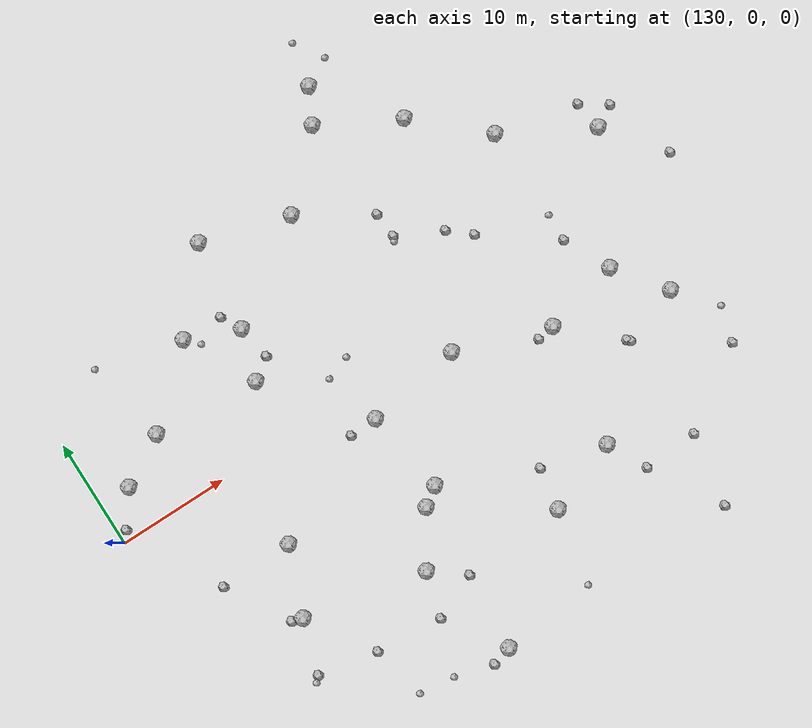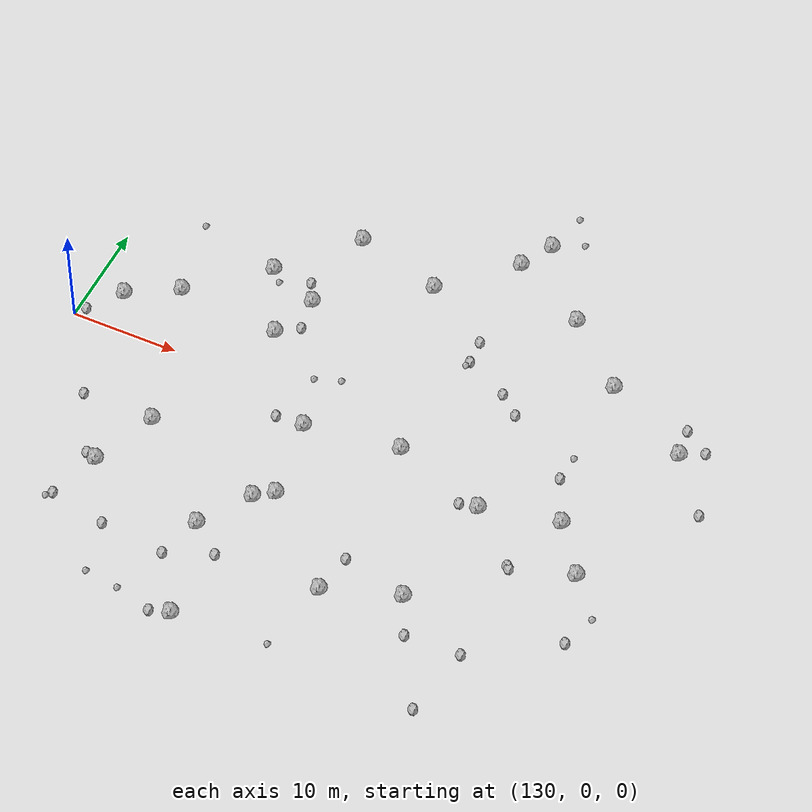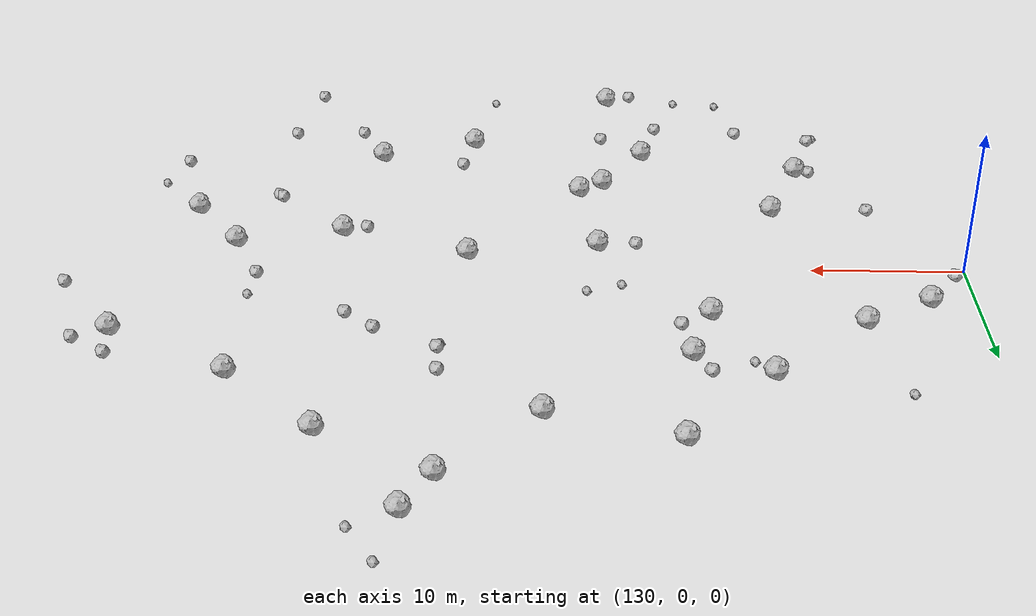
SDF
<sdf version="1.6">
 <world name="default">
  <include><uri>model://sun</uri></include>
  <model name="rock1_4_2">
   <include><uri>model://rock1</uri><pose>163.42857451865808 22.057677931532268 0.5 0 0 0</pose></include>
  </model>
  <model name="rock1_4_3">
   <include><uri>model://rock1</uri><pose>171.30248970167057 -4.42603301016937 0.5 0 0 0</pose></include>
  </model>
  <model name="rock1_4_4">
   <include><uri>model://rock1</uri><pose>162.89624630475998 -17.887943773245617 0.5 0 0 0</pose></include>
  </model>
  <model name="rock1_4_5">
   <include><uri>model://rock1</uri><pose>148.47829529275182 10.150947650268165 0.5 0 0 0</pose></include>
  </model>
  <model name="rock1_4_6">
   <include><uri>model://rock1</uri><pose>181.68502525014537 -7.349784486494123 0.5 0 0 0</pose></include>
  </model>
  <model name="rock1_4_7">
   <include><uri>model://rock1</uri><pose>157.5340373674738 16.275577896883476 0.5 0 0 0</pose></include>
  </model>
  <model name="rock1_4_8">
   <include><uri>model://rock1</uri><pose>137.3969005994166 6.404687936389358 0.5 0 0 0</pose></include>
  </model>
  <model name="rock1_4_9">
   <include><uri>model://rock1</uri><pose>155.1233991816422 -10.40272612277273 0.5 0 0 0</pose></include>
  </model>
  <model name="rock1_4_10">
   <include><uri>model://rock1</uri><pose>150.51610657387408 -16.13000491069848 0.5 0 0 0</pose></include>
  </model>
  <model name="rock1_4_11">
   <include><uri>model://rock1</uri><pose>132.96418667036585 3.8298181043057937 0.5 0 0 0</pose></include>
  </model>
  <model name="rock1_4_12">
   <include><uri>model://rock1</uri><pose>141.8650074743121 -7.776487384419532 0.5 0 0 0</pose></include>
  </model>
  <model name="rock1_4_13">
   <include><uri>model://rock1</uri><pose>165.0740769048542 25.204297280824278 0.5 0 0 0</pose></include>
  </model>
  <model name="rock1_4_14">
   <include><uri>model://rock1</uri><pose>162.68157987189144 -1.5084026194448903 0.5 0 0 0</pose></include>
  </model>
  <model name="rock1_4_15">
   <include><uri>model://rock1</uri><pose>184.4962583137686 8.172043731133812 0.5 0 0 0</pose></include>
  </model>
  <model name="rock1_4_16">
   <include><uri>model://rock1</uri><pose>153.98198348463328 -2.78788363229301 0.5 0 0 0</pose></include>
  </model>
  <model name="rock1_4_17">
   <include><uri>model://rock1</uri><pose>169.54105138106667 -15.53874354163636 0.5 0 0 0</pose></include>
  </model>
  <model name="rock1_4_18">
   <include><uri>model://rock1</uri><pose>178.34218600177167 -2.821514320091193 0.5 0 0 0</pose></include>
  </model>
  <model name="rock1_4_19">
   <include><uri>model://rock1</uri><pose>170.5781214827644 18.173732205172477 0.5 0 0 0</pose></include>
  </model>
  <model name="rock1_4_20">
   <include><uri>model://rock1</uri><pose>143.70255498075744 12.104029037482476 0.5 0 0 0</pose></include>
  </model>
  <model name="rock1_4_21">
   <include><uri>model://rock1</uri><pose>149.39284671665735 18.616920119529368 0.5 0 0 0</pose></include>
  </model>
  <model name="rock1_4_22">
   <include><uri>model://rock1</uri><pose>153.48374353748716 -11.551418453324985 0.5 0 0 0</pose></include>
  </model>
  <model name="rock1_4_23">
   <include><uri>model://rock1</uri><pose>152.85456808604783 -25.40208249816431 0.5 0 0 0</pose></include>
  </model>
  <model name="rock1_4_24">
   <include><uri>model://rock1</uri><pose>176.5247778817557 12.634084828604237 0.5 0 0 0</pose></include>
  </model>
  <model name="rock1_4_25">
   <include><uri>model://rock1</uri><pose>147.0436752727609 5.595885624447305 0.5 0 0 0</pose></include>
  </model>
  <model name="rock1_4_26">
   <include><uri>model://rock1</uri><pose>139.51170071051914 -13.744155358283308 0.5 0 0 0</pose></include>
  </model>
  <model name="rock2_4_0">
   <include><uri>model://rock2</uri><pose>168.09553942737827 7.798663784526255 0.3 0 0 0</pose></include>
  </model>
  <model name="rock2_4_1">
   <include><uri>model://rock2</uri><pose>176.2949222585869 -9.149535443771946 0.3 0 0 0</pose></include>
  </model>
  <model name="rock2_4_2">
   <include><uri>model://rock2</uri><pose>171.31722648105875 -19.09206630499076 0.3 0 0 0</pose></include>
  </model>
  <model name="rock2_4_3">
   <include><uri>model://rock2</uri><pose>188.54679075708492 2.871780224128287 0.3 0 0 0</pose></include>
  </model>
  <model name="rock2_4_4">
   <include><uri>model://rock2</uri><pose>186.5052160857623 9.309791843756088 0.3 0 0 0</pose></include>
  </model>
  <model name="rock2_4_5">
   <include><uri>model://rock2</uri><pose>163.9910595616871 9.891715082171977 0.3 0 0 0</pose></include>
  </model>
  <model name="rock2_4_6">
   <include><uri>model://rock2</uri><pose>137.9597721184707 -18.495398535597978 0.3 0 0 0</pose></include>
  </model>
  <model name="rock2_4_7">
   <include><uri>model://rock2</uri><pose>183.6319037660907 -14.108046609432039 0.3 0 0 0</pose></include>
  </model>
  <model name="rock2_4_8">
   <include><uri>model://rock2</uri><pose>149.31796293108263 -20.160233114070678 0.3 0 0 0</pose></include>
  </model>
  <model name="rock2_4_9">
   <include><uri>model://rock2</uri><pose>151.38283253582222 -2.8500836983992244 0.3 0 0 0</pose></include>
  </model>
  <model name="rock2_4_10">
   <include><uri>model://rock2</uri><pose>138.50465047124158 -13.425736818614261 0.3 0 0 0</pose></include>
  </model>
  <model name="rock2_4_11">
   <include><uri>model://rock2</uri><pose>170.03692607755377 6.103380700260715 0.3 0 0 0</pose></include>
  </model>
  <model name="rock2_4_12">
   <include><uri>model://rock2</uri><pose>143.2842498663419 -19.580977931619532 0.3 0 0 0</pose></include>
  </model>
  <model name="rock2_4_13">
   <include><uri>model://rock2</uri><pose>184.151597384625 10.925145007461715 0.3 0 0 0</pose></include>
  </model>
  <model name="rock2_4_14">
   <include><uri>model://rock2</uri><pose>176.35468733450912 -18.871234812490073 0.3 0 0 0</pose></include>
  </model>
  <model name="rock2_4_15">
   <include><uri>model://rock2</uri><pose>163.84919626991694 12.277986515229998 0.3 0 0 0</pose></include>
  </model>
  <model name="rock2_4_16">
   <include><uri>model://rock2</uri><pose>151.04796488110338 -25.90114347179383 0.3 0 0 0</pose></include>
  </model>
  <model name="rock2_4_17">
   <include><uri>model://rock2</uri><pose>148.94884180033552 7.001777635682494 0.3 0 0 0</pose></include>
  </model>
  <model name="rock2_4_18">
   <include><uri>model://rock2</uri><pose>153.41700086263592 -18.44108068198019 0.3 0 0 0</pose></include>
  </model>
  <model name="rock2_4_19">
   <include><uri>model://rock2</uri><pose>147.44846025022784 12.057699949334165 0.3 0 0 0</pose></include>
  </model>
  <model name="rock2_4_20">
   <include><uri>model://rock2</uri><pose>176.0328312527314 -8.915028419671046 0.3 0 0 0</pose></include>
  </model>
  <model name="rock2_4_21">
   <include><uri>model://rock2</uri><pose>169.65098014065313 -4.684071599515608 0.3 0 0 0</pose></include>
  </model>
  <model name="rock2_4_22">
   <include><uri>model://rock2</uri><pose>135.18956068305928 -7.796289666594824 0.3 0 0 0</pose></include>
  </model>
  <model name="rock2_4_23">
   <include><uri>model://rock2</uri><pose>163.54941349618858 -14.107622629925968 0.3 0 0 0</pose></include>
  </model>
  <model name="rock2_4_24">
   <include><uri>model://rock2</uri><pose>130.76890216583416 0.8527020744583105 0.3 0 0 0</pose></include>
  </model>
  <model name="rock2_4_25">
   <include><uri>model://rock2</uri><pose>176.3242467033572 1.4378736730199186 0.3 0 0 0</pose></include>
  </model>
  <model name="rock2_4_26">
   <include><uri>model://rock2</uri><pose>175.10787592840666 -25.44189756172849 0.3 0 0 0</pose></include>
  </model>
  <model name="rock3_4_0">
   <include><uri>model://rock3</uri><pose>152.47135161316737 2.298081994201972 0.2 0 0 0</pose></include>
  </model>
  <model name="rock3_4_1">
   <include><uri>model://rock3</uri><pose>176.47520795434366 3.9738205156844018 0.2 0 0 0</pose></include>
  </model>
  <model name="rock3_4_2">
   <include><uri>model://rock3</uri><pose>135.80884308396102 14.109411804369316 0.2 0 0 0</pose></include>
  </model>
  <model name="rock3_4_3">
   <include><uri>model://rock3</uri><pose>165.9592321878995 29.34047841452835 0.2 0 0 0</pose></include>
  </model>
  <model name="rock3_4_4">
   <include><uri>model://rock3</uri><pose>161.45514588422478 -24.713636423750202 0.2 0 0 0</pose></include>
  </model>
  <model name="rock3_4_5">
   <include><uri>model://rock3</uri><pose>167.6475970035287 26.662287729842866 0.2 0 0 0</pose></include>
  </model>
  <model name="rock3_4_6">
   <include><uri>model://rock3</uri><pose>144.36387629854738 -24.538704563002916 0.2 0 0 0</pose></include>
  </model>
  <model name="rock3_4_7">
   <include><uri>model://rock3</uri><pose>163.78167660670726 9.399944435786509 0.2 0 0 0</pose></include>
  </model>
  <model name="rock3_4_8">
   <include><uri>model://rock3</uri><pose>144.76049605919852 10.950946353922873 0.2 0 0 0</pose></include>
  </model>
  <model name="rock3_4_9">
   <include><uri>model://rock3</uri><pose>147.55905596638917 -24.96162226441944 0.2 0 0 0</pose></include>
  </model>
  <model name="rock3_4_10">
   <include><uri>model://rock3</uri><pose>184.64956622341552 -10.922692731981748 0.2 0 0 0</pose></include>
  </model>
  <model name="rock3_4_11">
   <include><uri>model://rock3</uri><pose>154.74293863515553 3.116497724318272 0.2 0 0 0</pose></include>
  </model>
  <model name="rock3_4_12">
   <include><uri>model://rock3</uri><pose>137.46504669555793 -18.988506934688402 0.2 0 0 0</pose></include>
  </model>
 </world>
</sdf>
